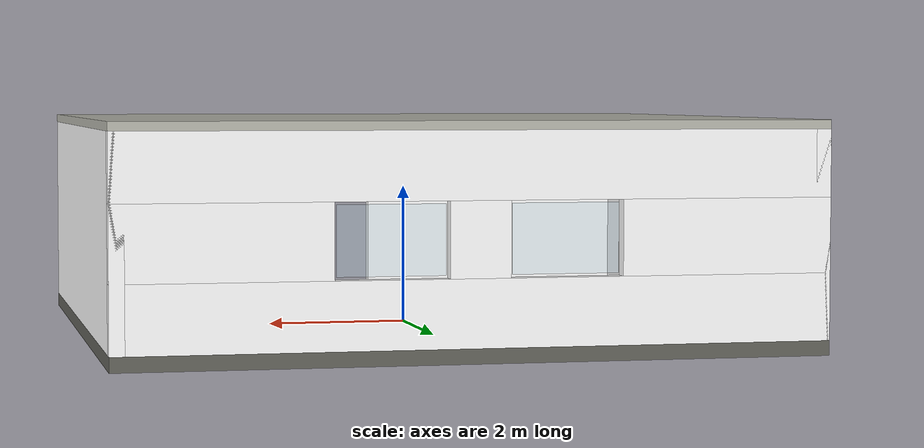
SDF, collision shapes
<?xml version="1.0"?>
<sdf version="1.12">
  <model name="factory_shell">
    <static>true</static>
    <model name='factory_floor'>
      <static>true</static>
      <link name='floor_link'>
        <pose>0 0 0 0 0 0</pose>
        <collision name='floor_collision'>
          <geometry>
            <box>
              <size>9.5 9.5 0.20000000000000001</size>
            </box>
          </geometry>
          <surface>
            <friction>
              <ode>
                <mu>1.2</mu>
                <mu2>1.2</mu2>
              </ode>
            </friction>
            <bounce/>
            <contact/>
          </surface>
        </collision>
        <visual name='floor_visual'>
          <geometry>
            <box>
              <size>9.5 9.5 0.20000000000000001</size>
            </box>
          </geometry>
          <material>
            <ambient>0.239999995 0.239999995 0.219999999 1</ambient>
            <diffuse>0.379999995 0.379999995 0.349999994 1</diffuse>
            <specular>0.119999997 0.119999997 0.100000001 1</specular>
          </material>
        </visual>
        <visual name='floor_surface_visual'>
          <pose>0 0 0.10050000000000001 0 0 0</pose>
          <geometry>
            <mesh>
              <uri>model://factory_shell/surfaces/tiled_plane_9p5m_8x.obj</uri>
            </mesh>
          </geometry>
          <material>
            <ambient>1 1 1 1</ambient>
            <diffuse>1 1 1 1</diffuse>
            <specular>0.119999997 0.119999997 0.119999997 1</specular>
            <pbr>
              <metal>
                <albedo_map>model://factory_shell/textures/interior_tiles_1k/textures/interior_tiles_diff_1k.jpg</albedo_map>
                <roughness_map>model://factory_shell/textures/interior_tiles_1k/textures/interior_tiles_rough_1k.exr</roughness_map>
                <metalness>0.0</metalness>
                <ambient_occlusion_map>model://factory_shell/textures/interior_tiles_1k/textures/interior_tiles_ao_1k.jpg</ambient_occlusion_map>
                <normal_map type='tangent'>model://factory_shell/textures/interior_tiles_1k/textures/interior_tiles_nor_gl_1k.exr</normal_map>
              </metal>
            </pbr>
          </material>
        </visual>
        <inertial>
          <pose>0 0 0 0 0 0</pose>
          <mass>1</mass>
          <inertia>
            <ixx>1</ixx>
            <ixy>0</ixy>
            <ixz>0</ixz>
            <iyy>1</iyy>
            <iyz>0</iyz>
            <izz>1</izz>
          </inertia>
        </inertial>
        <enable_wind>false</enable_wind>
      </link>
      <pose>0 0 0 0 0 0</pose>
      <self_collide>false</self_collide>
    </model>
    <model name='factory_ceiling'>
      <static>true</static>
      <link name='ceiling_link'>
        <pose>0 0 2.96 0 0 0</pose>
        <collision name='ceiling_collision'>
          <geometry>
            <box>
              <size>9.5 9.5 0.12</size>
            </box>
          </geometry>
          <surface>
            <friction>
              <ode/>
            </friction>
            <bounce/>
            <contact/>
          </surface>
        </collision>
        <visual name='ceiling_visual'>
          <geometry>
            <box>
              <size>9.5 9.5 0.12</size>
            </box>
          </geometry>
          <material>
            <ambient>0.579999983 0.579999983 0.560000002 1</ambient>
            <diffuse>0.720000029 0.720000029 0.680000007 1</diffuse>
            <specular>0.0299999993 0.0299999993 0.0299999993 1</specular>
          </material>
        </visual>
        <visual name='ceiling_surface_visual'>
          <pose>0 0 -0.060499999999999998 3.1415926535897931 0 0</pose>
          <geometry>
            <mesh>
              <uri>model://factory_shell/surfaces/tiled_plane_9p5m_8x.obj</uri>
            </mesh>
          </geometry>
          <material>
            <ambient>1 1 1 1</ambient>
            <diffuse>1 1 1 1</diffuse>
            <specular>0.0500000007 0.0500000007 0.0500000007 1</specular>
            <pbr>
              <metal>
                <albedo_map>model://factory_shell/textures/ceiling_interior_1k/textures/ceiling_interior_diff_1k.jpg</albedo_map>
                <roughness_map>model://factory_shell/textures/ceiling_interior_1k/textures/ceiling_interior_rough_1k.exr</roughness_map>
                <metalness>0.0</metalness>
                <ambient_occlusion_map>model://factory_shell/textures/ceiling_interior_1k/textures/ceiling_interior_ao_1k.jpg</ambient_occlusion_map>
                <normal_map type='tangent'>model://factory_shell/textures/ceiling_interior_1k/textures/ceiling_interior_nor_gl_1k.exr</normal_map>
              </metal>
            </pbr>
          </material>
        </visual>
        <inertial>
          <pose>0 0 0 0 0 0</pose>
          <mass>1</mass>
          <inertia>
            <ixx>1</ixx>
            <ixy>0</ixy>
            <ixz>0</ixz>
            <iyy>1</iyy>
            <iyz>0</iyz>
            <izz>1</izz>
          </inertia>
        </inertial>
        <enable_wind>false</enable_wind>
      </link>
      <pose>0 0 0 0 0 0</pose>
      <self_collide>false</self_collide>
    </model>
    <model name='north_wall'>
      <static>true</static>
      <link name='north_wall_lower_link'>
        <pose>0 4.6500000000000004 0.55000000000000004 0 0 0</pose>
        <collision name='north_wall_lower_collision'>
          <geometry>
            <box>
              <size>9.5 0.20000000000000001 0.90000000000000002</size>
            </box>
          </geometry>
          <surface>
            <friction>
              <ode/>
            </friction>
            <bounce/>
            <contact/>
          </surface>
        </collision>
        <visual name='north_wall_lower_visual'>
          <geometry>
            <mesh>
              <uri>model://factory_shell/meshes/north_wall_lower.obj</uri>
            </mesh>
          </geometry>
          <material>
            <ambient>1 1 1 1</ambient>
            <diffuse>1 1 1 1</diffuse>
            <specular>0.150000006 0.150000006 0.150000006 1</specular>
            <pbr>
              <metal>
                <albedo_map>model://factory_shell/textures/plastered_wall_02_1k/textures/plastered_wall_02_diff_1k.jpg</albedo_map>
                <roughness_map>model://factory_shell/textures/plastered_wall_02_1k/textures/plastered_wall_02_rough_1k.exr</roughness_map>
                <metalness>0.0</metalness>
                <ambient_occlusion_map>model://factory_shell/textures/plastered_wall_02_1k/textures/plastered_wall_02_ao_1k.jpg</ambient_occlusion_map>
                <normal_map type='tangent'>model://factory_shell/textures/plastered_wall_02_1k/textures/plastered_wall_02_nor_gl_1k.exr</normal_map>
              </metal>
            </pbr>
          </material>
        </visual>
        <inertial>
          <pose>0 0 0 0 0 0</pose>
          <mass>1</mass>
          <inertia>
            <ixx>1</ixx>
            <ixy>0</ixy>
            <ixz>0</ixz>
            <iyy>1</iyy>
            <iyz>0</iyz>
            <izz>1</izz>
          </inertia>
        </inertial>
        <enable_wind>false</enable_wind>
      </link>
      <link name='north_wall_upper_link'>
        <pose>0 4.6500000000000004 2.4500000000000002 0 0 0</pose>
        <collision name='north_wall_upper_collision'>
          <geometry>
            <box>
              <size>9.5 0.20000000000000001 0.90000000000000002</size>
            </box>
          </geometry>
          <surface>
            <friction>
              <ode/>
            </friction>
            <bounce/>
            <contact/>
          </surface>
        </collision>
        <visual name='north_wall_upper_visual'>
          <geometry>
            <mesh>
              <uri>model://factory_shell/meshes/north_wall_upper.obj</uri>
            </mesh>
          </geometry>
          <material>
            <ambient>1 1 1 1</ambient>
            <diffuse>1 1 1 1</diffuse>
            <specular>0.150000006 0.150000006 0.150000006 1</specular>
            <pbr>
              <metal>
                <albedo_map>model://factory_shell/textures/plastered_wall_02_1k/textures/plastered_wall_02_diff_1k.jpg</albedo_map>
                <roughness_map>model://factory_shell/textures/plastered_wall_02_1k/textures/plastered_wall_02_rough_1k.exr</roughness_map>
                <metalness>0.0</metalness>
                <ambient_occlusion_map>model://factory_shell/textures/plastered_wall_02_1k/textures/plastered_wall_02_ao_1k.jpg</ambient_occlusion_map>
                <normal_map type='tangent'>model://factory_shell/textures/plastered_wall_02_1k/textures/plastered_wall_02_nor_gl_1k.exr</normal_map>
              </metal>
            </pbr>
          </material>
        </visual>
        <inertial>
          <pose>0 0 0 0 0 0</pose>
          <mass>1</mass>
          <inertia>
            <ixx>1</ixx>
            <ixy>0</ixy>
            <ixz>0</ixz>
            <iyy>1</iyy>
            <iyz>0</iyz>
            <izz>1</izz>
          </inertia>
        </inertial>
        <enable_wind>false</enable_wind>
      </link>
      <link name='north_wall_left_pier_link'>
        <pose>-3.3250000000000002 4.6500000000000004 1.5 0 0 0</pose>
        <collision name='north_wall_left_pier_collision'>
          <geometry>
            <box>
              <size>2.8500000000000001 0.20000000000000001 1</size>
            </box>
          </geometry>
          <surface>
            <friction>
              <ode/>
            </friction>
            <bounce/>
            <contact/>
          </surface>
        </collision>
        <visual name='north_wall_left_pier_visual'>
          <geometry>
            <mesh>
              <uri>model://factory_shell/meshes/north_wall_left_pier.obj</uri>
            </mesh>
          </geometry>
          <material>
            <ambient>1 1 1 1</ambient>
            <diffuse>1 1 1 1</diffuse>
            <specular>0.150000006 0.150000006 0.150000006 1</specular>
            <pbr>
              <metal>
                <albedo_map>model://factory_shell/textures/plastered_wall_02_1k/textures/plastered_wall_02_diff_1k.jpg</albedo_map>
                <roughness_map>model://factory_shell/textures/plastered_wall_02_1k/textures/plastered_wall_02_rough_1k.exr</roughness_map>
                <metalness>0.0</metalness>
                <ambient_occlusion_map>model://factory_shell/textures/plastered_wall_02_1k/textures/plastered_wall_02_ao_1k.jpg</ambient_occlusion_map>
                <normal_map type='tangent'>model://factory_shell/textures/plastered_wall_02_1k/textures/plastered_wall_02_nor_gl_1k.exr</normal_map>
              </metal>
            </pbr>
          </material>
        </visual>
        <inertial>
          <pose>0 0 0 0 0 0</pose>
          <mass>1</mass>
          <inertia>
            <ixx>1</ixx>
            <ixy>0</ixy>
            <ixz>0</ixz>
            <iyy>1</iyy>
            <iyz>0</iyz>
            <izz>1</izz>
          </inertia>
        </inertial>
        <enable_wind>false</enable_wind>
      </link>
      <link name='north_wall_center_pier_link'>
        <pose>0 4.6500000000000004 1.5 0 0 0</pose>
        <collision name='north_wall_center_pier_collision'>
          <geometry>
            <box>
              <size>0.80000000000000004 0.20000000000000001 1</size>
            </box>
          </geometry>
          <surface>
            <friction>
              <ode/>
            </friction>
            <bounce/>
            <contact/>
          </surface>
        </collision>
        <visual name='north_wall_center_pier_visual'>
          <geometry>
            <mesh>
              <uri>model://factory_shell/meshes/north_wall_center_pier.obj</uri>
            </mesh>
          </geometry>
          <material>
            <ambient>1 1 1 1</ambient>
            <diffuse>1 1 1 1</diffuse>
            <specular>0.150000006 0.150000006 0.150000006 1</specular>
            <pbr>
              <metal>
                <albedo_map>model://factory_shell/textures/plastered_wall_02_1k/textures/plastered_wall_02_diff_1k.jpg</albedo_map>
                <roughness_map>model://factory_shell/textures/plastered_wall_02_1k/textures/plastered_wall_02_rough_1k.exr</roughness_map>
                <metalness>0.0</metalness>
                <ambient_occlusion_map>model://factory_shell/textures/plastered_wall_02_1k/textures/plastered_wall_02_ao_1k.jpg</ambient_occlusion_map>
                <normal_map type='tangent'>model://factory_shell/textures/plastered_wall_02_1k/textures/plastered_wall_02_nor_gl_1k.exr</normal_map>
              </metal>
            </pbr>
          </material>
        </visual>
        <inertial>
          <pose>0 0 0 0 0 0</pose>
          <mass>1</mass>
          <inertia>
            <ixx>1</ixx>
            <ixy>0</ixy>
            <ixz>0</ixz>
            <iyy>1</iyy>
            <iyz>0</iyz>
            <izz>1</izz>
          </inertia>
        </inertial>
        <enable_wind>false</enable_wind>
      </link>
      <link name='north_wall_right_pier_link'>
        <pose>3.3250000000000002 4.6500000000000004 1.5 0 0 0</pose>
        <collision name='north_wall_right_pier_collision'>
          <geometry>
            <box>
              <size>2.8500000000000001 0.20000000000000001 1</size>
            </box>
          </geometry>
          <surface>
            <friction>
              <ode/>
            </friction>
            <bounce/>
            <contact/>
          </surface>
        </collision>
        <visual name='north_wall_right_pier_visual'>
          <geometry>
            <mesh>
              <uri>model://factory_shell/meshes/north_wall_right_pier.obj</uri>
            </mesh>
          </geometry>
          <material>
            <ambient>1 1 1 1</ambient>
            <diffuse>1 1 1 1</diffuse>
            <specular>0.150000006 0.150000006 0.150000006 1</specular>
            <pbr>
              <metal>
                <albedo_map>model://factory_shell/textures/plastered_wall_02_1k/textures/plastered_wall_02_diff_1k.jpg</albedo_map>
                <roughness_map>model://factory_shell/textures/plastered_wall_02_1k/textures/plastered_wall_02_rough_1k.exr</roughness_map>
                <metalness>0.0</metalness>
                <ambient_occlusion_map>model://factory_shell/textures/plastered_wall_02_1k/textures/plastered_wall_02_ao_1k.jpg</ambient_occlusion_map>
                <normal_map type='tangent'>model://factory_shell/textures/plastered_wall_02_1k/textures/plastered_wall_02_nor_gl_1k.exr</normal_map>
              </metal>
            </pbr>
          </material>
        </visual>
        <inertial>
          <pose>0 0 0 0 0 0</pose>
          <mass>1</mass>
          <inertia>
            <ixx>1</ixx>
            <ixy>0</ixy>
            <ixz>0</ixz>
            <iyy>1</iyy>
            <iyz>0</iyz>
            <izz>1</izz>
          </inertia>
        </inertial>
        <enable_wind>false</enable_wind>
      </link>
      <link name='north_window_left_link'>
        <pose>-1.1499999999999999 4.6500000000000004 1.5 0 0 0</pose>
        <collision name='north_window_left_glass_collision'>
          <geometry>
            <box>
              <size>1.4199999999999999 0.029999999999999999 0.92000000000000004</size>
            </box>
          </geometry>
          <surface>
            <friction>
              <ode/>
            </friction>
            <bounce/>
            <contact/>
          </surface>
        </collision>
        <visual name='north_window_left_glass_visual'>
          <geometry>
            <box>
              <size>1.4199999999999999 0.029999999999999999 0.92000000000000004</size>
            </box>
          </geometry>
          <material>
            <ambient>0.620000005 0.75 0.819999993 0.300000012</ambient>
            <diffuse>0.74000001 0.860000014 0.920000017 0.300000012</diffuse>
            <specular>0.219999999 0.219999999 0.219999999 1</specular>
          </material>
          <transparency>0.59999999999999998</transparency>
        </visual>
        <visual name='north_window_left_frame_top_visual'>
          <pose>0 0 0.46999999999999997 0 0 0</pose>
          <geometry>
            <box>
              <size>1.5 0.059999999999999998 0.059999999999999998</size>
            </box>
          </geometry>
          <material>
            <ambient>0.180000007 0.200000003 0.219999999 1</ambient>
            <diffuse>0.280000001 0.300000012 0.319999993 1</diffuse>
            <specular>0.0799999982 0.0799999982 0.0799999982 1</specular>
          </material>
        </visual>
        <visual name='north_window_left_frame_bottom_visual'>
          <pose>0 0 -0.46999999999999997 0 0 0</pose>
          <geometry>
            <box>
              <size>1.5 0.059999999999999998 0.059999999999999998</size>
            </box>
          </geometry>
          <material>
            <ambient>0.180000007 0.200000003 0.219999999 1</ambient>
            <diffuse>0.280000001 0.300000012 0.319999993 1</diffuse>
            <specular>0.0799999982 0.0799999982 0.0799999982 1</specular>
          </material>
        </visual>
        <visual name='north_window_left_frame_left_visual'>
          <pose>-0.71999999999999997 0 0 0 0 0</pose>
          <geometry>
            <box>
              <size>0.059999999999999998 0.059999999999999998 1</size>
            </box>
          </geometry>
          <material>
            <ambient>0.180000007 0.200000003 0.219999999 1</ambient>
            <diffuse>0.280000001 0.300000012 0.319999993 1</diffuse>
            <specular>0.0799999982 0.0799999982 0.0799999982 1</specular>
          </material>
        </visual>
        <visual name='north_window_left_frame_right_visual'>
          <pose>0.71999999999999997 0 0 0 0 0</pose>
          <geometry>
            <box>
              <size>0.059999999999999998 0.059999999999999998 1</size>
            </box>
          </geometry>
          <material>
            <ambient>0.180000007 0.200000003 0.219999999 1</ambient>
            <diffuse>0.280000001 0.300000012 0.319999993 1</diffuse>
            <specular>0.0799999982 0.0799999982 0.0799999982 1</specular>
          </material>
        </visual>
        <visual name='north_window_left_frame_center_visual'>
          <pose>0 0 0 0 0 0</pose>
          <geometry>
            <box>
              <size>0.050000000000000003 0.050000000000000003 0.92000000000000004</size>
            </box>
          </geometry>
          <material>
            <ambient>0.180000007 0.200000003 0.219999999 1</ambient>
            <diffuse>0.280000001 0.300000012 0.319999993 1</diffuse>
            <specular>0.0799999982 0.0799999982 0.0799999982 1</specular>
          </material>
        </visual>
        <visual name='north_window_left_frame_transom_visual'>
          <pose>0 0 0.10000000000000001 0 0 0</pose>
          <geometry>
            <box>
              <size>1.4199999999999999 0.050000000000000003 0.050000000000000003</size>
            </box>
          </geometry>
          <material>
            <ambient>0.180000007 0.200000003 0.219999999 1</ambient>
            <diffuse>0.280000001 0.300000012 0.319999993 1</diffuse>
            <specular>0.0799999982 0.0799999982 0.0799999982 1</specular>
          </material>
        </visual>
        <inertial>
          <pose>0 0 0 0 0 0</pose>
          <mass>1</mass>
          <inertia>
            <ixx>1</ixx>
            <ixy>0</ixy>
            <ixz>0</ixz>
            <iyy>1</iyy>
            <iyz>0</iyz>
            <izz>1</izz>
          </inertia>
        </inertial>
        <enable_wind>false</enable_wind>
      </link>
      <link name='north_window_right_link'>
        <pose>1.1499999999999999 4.6500000000000004 1.5 0 0 0</pose>
        <collision name='north_window_right_glass_collision'>
          <geometry>
            <box>
              <size>1.4199999999999999 0.029999999999999999 0.92000000000000004</size>
            </box>
          </geometry>
          <surface>
            <friction>
              <ode/>
            </friction>
            <bounce/>
            <contact/>
          </surface>
        </collision>
        <visual name='north_window_right_glass_visual'>
          <geometry>
            <box>
              <size>1.4199999999999999 0.029999999999999999 0.92000000000000004</size>
            </box>
          </geometry>
          <material>
            <ambient>0.620000005 0.75 0.819999993 0.300000012</ambient>
            <diffuse>0.74000001 0.860000014 0.920000017 0.300000012</diffuse>
            <specular>0.219999999 0.219999999 0.219999999 1</specular>
          </material>
          <transparency>0.59999999999999998</transparency>
        </visual>
        <visual name='north_window_right_frame_top_visual'>
          <pose>0 0 0.46999999999999997 0 0 0</pose>
          <geometry>
            <box>
              <size>1.5 0.059999999999999998 0.059999999999999998</size>
            </box>
          </geometry>
          <material>
            <ambient>0.180000007 0.200000003 0.219999999 1</ambient>
            <diffuse>0.280000001 0.300000012 0.319999993 1</diffuse>
            <specular>0.0799999982 0.0799999982 0.0799999982 1</specular>
          </material>
        </visual>
        <visual name='north_window_right_frame_bottom_visual'>
          <pose>0 0 -0.46999999999999997 0 0 0</pose>
          <geometry>
            <box>
              <size>1.5 0.059999999999999998 0.059999999999999998</size>
            </box>
          </geometry>
          <material>
            <ambient>0.180000007 0.200000003 0.219999999 1</ambient>
            <diffuse>0.280000001 0.300000012 0.319999993 1</diffuse>
            <specular>0.0799999982 0.0799999982 0.0799999982 1</specular>
          </material>
        </visual>
        <visual name='north_window_right_frame_left_visual'>
          <pose>-0.71999999999999997 0 0 0 0 0</pose>
          <geometry>
            <box>
              <size>0.059999999999999998 0.059999999999999998 1</size>
            </box>
          </geometry>
          <material>
            <ambient>0.180000007 0.200000003 0.219999999 1</ambient>
            <diffuse>0.280000001 0.300000012 0.319999993 1</diffuse>
            <specular>0.0799999982 0.0799999982 0.0799999982 1</specular>
          </material>
        </visual>
        <visual name='north_window_right_frame_right_visual'>
          <pose>0.71999999999999997 0 0 0 0 0</pose>
          <geometry>
            <box>
              <size>0.059999999999999998 0.059999999999999998 1</size>
            </box>
          </geometry>
          <material>
            <ambient>0.180000007 0.200000003 0.219999999 1</ambient>
            <diffuse>0.280000001 0.300000012 0.319999993 1</diffuse>
            <specular>0.0799999982 0.0799999982 0.0799999982 1</specular>
          </material>
        </visual>
        <visual name='north_window_right_frame_center_visual'>
          <pose>0 0 0 0 0 0</pose>
          <geometry>
            <box>
              <size>0.050000000000000003 0.050000000000000003 0.92000000000000004</size>
            </box>
          </geometry>
          <material>
            <ambient>0.180000007 0.200000003 0.219999999 1</ambient>
            <diffuse>0.280000001 0.300000012 0.319999993 1</diffuse>
            <specular>0.0799999982 0.0799999982 0.0799999982 1</specular>
          </material>
        </visual>
        <visual name='north_window_right_frame_transom_visual'>
          <pose>0 0 0.10000000000000001 0 0 0</pose>
          <geometry>
            <box>
              <size>1.4199999999999999 0.050000000000000003 0.050000000000000003</size>
            </box>
          </geometry>
          <material>
            <ambient>0.180000007 0.200000003 0.219999999 1</ambient>
            <diffuse>0.280000001 0.300000012 0.319999993 1</diffuse>
            <specular>0.0799999982 0.0799999982 0.0799999982 1</specular>
          </material>
        </visual>
        <inertial>
          <pose>0 0 0 0 0 0</pose>
          <mass>1</mass>
          <inertia>
            <ixx>1</ixx>
            <ixy>0</ixy>
            <ixz>0</ixz>
            <iyy>1</iyy>
            <iyz>0</iyz>
            <izz>1</izz>
          </inertia>
        </inertial>
        <enable_wind>false</enable_wind>
      </link>
      <pose>0 0 0 0 0 0</pose>
      <self_collide>false</self_collide>
    </model>
    <model name='south_wall'>
      <static>true</static>
      <link name='south_wall_left_link'>
        <pose>-2.5625 -4.6500000000000004 1.5 0 0 0</pose>
        <collision name='south_wall_left_collision'>
          <geometry>
            <box>
              <size>4.375 0.20000000000000001 2.7999999999999998</size>
            </box>
          </geometry>
          <surface>
            <friction>
              <ode/>
            </friction>
            <bounce/>
            <contact/>
          </surface>
        </collision>
        <visual name='south_wall_left_visual'>
          <geometry>
            <mesh>
              <uri>model://factory_shell/meshes/south_wall_left.obj</uri>
            </mesh>
          </geometry>
          <material>
            <ambient>1 1 1 1</ambient>
            <diffuse>1 1 1 1</diffuse>
            <specular>0.150000006 0.150000006 0.150000006 1</specular>
            <pbr>
              <metal>
                <albedo_map>model://factory_shell/textures/plastered_wall_02_1k/textures/plastered_wall_02_diff_1k.jpg</albedo_map>
                <roughness_map>model://factory_shell/textures/plastered_wall_02_1k/textures/plastered_wall_02_rough_1k.exr</roughness_map>
                <metalness>0.0</metalness>
                <ambient_occlusion_map>model://factory_shell/textures/plastered_wall_02_1k/textures/plastered_wall_02_ao_1k.jpg</ambient_occlusion_map>
                <normal_map type='tangent'>model://factory_shell/textures/plastered_wall_02_1k/textures/plastered_wall_02_nor_gl_1k.exr</normal_map>
              </metal>
            </pbr>
          </material>
        </visual>
        <inertial>
          <pose>0 0 0 0 0 0</pose>
          <mass>1</mass>
          <inertia>
            <ixx>1</ixx>
            <ixy>0</ixy>
            <ixz>0</ixz>
            <iyy>1</iyy>
            <iyz>0</iyz>
            <izz>1</izz>
          </inertia>
        </inertial>
        <enable_wind>false</enable_wind>
      </link>
      <link name='south_wall_right_link'>
        <pose>2.5625 -4.6500000000000004 1.5 0 0 0</pose>
        <collision name='south_wall_right_collision'>
          <geometry>
            <box>
              <size>4.375 0.20000000000000001 2.7999999999999998</size>
            </box>
          </geometry>
          <surface>
            <friction>
              <ode/>
            </friction>
            <bounce/>
            <contact/>
          </surface>
        </collision>
        <visual name='south_wall_right_visual'>
          <geometry>
            <mesh>
              <uri>model://factory_shell/meshes/south_wall_right.obj</uri>
            </mesh>
          </geometry>
          <material>
            <ambient>1 1 1 1</ambient>
            <diffuse>1 1 1 1</diffuse>
            <specular>0.150000006 0.150000006 0.150000006 1</specular>
            <pbr>
              <metal>
                <albedo_map>model://factory_shell/textures/plastered_wall_02_1k/textures/plastered_wall_02_diff_1k.jpg</albedo_map>
                <roughness_map>model://factory_shell/textures/plastered_wall_02_1k/textures/plastered_wall_02_rough_1k.exr</roughness_map>
                <metalness>0.0</metalness>
                <ambient_occlusion_map>model://factory_shell/textures/plastered_wall_02_1k/textures/plastered_wall_02_ao_1k.jpg</ambient_occlusion_map>
                <normal_map type='tangent'>model://factory_shell/textures/plastered_wall_02_1k/textures/plastered_wall_02_nor_gl_1k.exr</normal_map>
              </metal>
            </pbr>
          </material>
        </visual>
        <inertial>
          <pose>0 0 0 0 0 0</pose>
          <mass>1</mass>
          <inertia>
            <ixx>1</ixx>
            <ixy>0</ixy>
            <ixz>0</ixz>
            <iyy>1</iyy>
            <iyz>0</iyz>
            <izz>1</izz>
          </inertia>
        </inertial>
        <enable_wind>false</enable_wind>
      </link>
      <link name='south_wall_overdoor_link'>
        <pose>0 -4.6500000000000004 2.4422799999999998 0 0 0</pose>
        <collision name='south_wall_overdoor_collision'>
          <geometry>
            <box>
              <size>0.90000000000000002 0.20000000000000001 0.91544999999999999</size>
            </box>
          </geometry>
          <surface>
            <friction>
              <ode/>
            </friction>
            <bounce/>
            <contact/>
          </surface>
        </collision>
        <visual name='south_wall_overdoor_visual'>
          <geometry>
            <mesh>
              <uri>model://factory_shell/meshes/south_wall_overdoor.obj</uri>
            </mesh>
          </geometry>
          <material>
            <ambient>1 1 1 1</ambient>
            <diffuse>1 1 1 1</diffuse>
            <specular>0.150000006 0.150000006 0.150000006 1</specular>
            <pbr>
              <metal>
                <albedo_map>model://factory_shell/textures/plastered_wall_02_1k/textures/plastered_wall_02_diff_1k.jpg</albedo_map>
                <roughness_map>model://factory_shell/textures/plastered_wall_02_1k/textures/plastered_wall_02_rough_1k.exr</roughness_map>
                <metalness>0.0</metalness>
                <ambient_occlusion_map>model://factory_shell/textures/plastered_wall_02_1k/textures/plastered_wall_02_ao_1k.jpg</ambient_occlusion_map>
                <normal_map type='tangent'>model://factory_shell/textures/plastered_wall_02_1k/textures/plastered_wall_02_nor_gl_1k.exr</normal_map>
              </metal>
            </pbr>
          </material>
        </visual>
        <inertial>
          <pose>0 0 0 0 0 0</pose>
          <mass>1</mass>
          <inertia>
            <ixx>1</ixx>
            <ixy>0</ixy>
            <ixz>0</ixz>
            <iyy>1</iyy>
            <iyz>0</iyz>
            <izz>1</izz>
          </inertia>
        </inertial>
        <enable_wind>false</enable_wind>
      </link>
      <pose>0 0 0 0 0 0</pose>
      <self_collide>false</self_collide>
    </model>
    <model name='east_wall'>
      <static>true</static>
      <link name='east_wall_link'>
        <pose>4.6500000000000004 0 1.5 0 0 1.5708</pose>
        <collision name='east_wall_collision'>
          <geometry>
            <box>
              <size>9.5 0.20000000000000001 2.7999999999999998</size>
            </box>
          </geometry>
          <surface>
            <friction>
              <ode/>
            </friction>
            <bounce/>
            <contact/>
          </surface>
        </collision>
        <visual name='east_wall_visual'>
          <geometry>
            <mesh>
              <uri>model://factory_shell/meshes/east_wall.obj</uri>
            </mesh>
          </geometry>
          <material>
            <ambient>1 1 1 1</ambient>
            <diffuse>1 1 1 1</diffuse>
            <specular>0.150000006 0.150000006 0.150000006 1</specular>
            <pbr>
              <metal>
                <albedo_map>model://factory_shell/textures/plastered_wall_02_1k/textures/plastered_wall_02_diff_1k.jpg</albedo_map>
                <roughness_map>model://factory_shell/textures/plastered_wall_02_1k/textures/plastered_wall_02_rough_1k.exr</roughness_map>
                <metalness>0.0</metalness>
                <ambient_occlusion_map>model://factory_shell/textures/plastered_wall_02_1k/textures/plastered_wall_02_ao_1k.jpg</ambient_occlusion_map>
                <normal_map type='tangent'>model://factory_shell/textures/plastered_wall_02_1k/textures/plastered_wall_02_nor_gl_1k.exr</normal_map>
              </metal>
            </pbr>
          </material>
        </visual>
        <inertial>
          <pose>0 0 0 0 0 0</pose>
          <mass>1</mass>
          <inertia>
            <ixx>1</ixx>
            <ixy>0</ixy>
            <ixz>0</ixz>
            <iyy>1</iyy>
            <iyz>0</iyz>
            <izz>1</izz>
          </inertia>
        </inertial>
        <enable_wind>false</enable_wind>
      </link>
      <pose>0 -6.343825442146034e-14 -1.3322676295501878e-15 0 0 1.3988810110276972e-14</pose>
      <self_collide>false</self_collide>
    </model>
    <model name='west_wall'>
      <static>true</static>
      <link name='west_wall_link'>
        <pose>-4.6500000000000004 0 1.5 0 0 1.5708</pose>
        <collision name='west_wall_collision'>
          <geometry>
            <box>
              <size>9.5 0.20000000000000001 2.7999999999999998</size>
            </box>
          </geometry>
          <surface>
            <friction>
              <ode/>
            </friction>
            <bounce/>
            <contact/>
          </surface>
        </collision>
        <visual name='west_wall_visual'>
          <geometry>
            <mesh>
              <uri>model://factory_shell/meshes/west_wall.obj</uri>
            </mesh>
          </geometry>
          <material>
            <ambient>1 1 1 1</ambient>
            <diffuse>1 1 1 1</diffuse>
            <specular>0.150000006 0.150000006 0.150000006 1</specular>
            <pbr>
              <metal>
                <albedo_map>model://factory_shell/textures/plastered_wall_02_1k/textures/plastered_wall_02_diff_1k.jpg</albedo_map>
                <roughness_map>model://factory_shell/textures/plastered_wall_02_1k/textures/plastered_wall_02_rough_1k.exr</roughness_map>
                <metalness>0.0</metalness>
                <ambient_occlusion_map>model://factory_shell/textures/plastered_wall_02_1k/textures/plastered_wall_02_ao_1k.jpg</ambient_occlusion_map>
                <normal_map type='tangent'>model://factory_shell/textures/plastered_wall_02_1k/textures/plastered_wall_02_nor_gl_1k.exr</normal_map>
              </metal>
            </pbr>
          </material>
        </visual>
        <inertial>
          <pose>0 0 0 0 0 0</pose>
          <mass>1</mass>
          <inertia>
            <ixx>1</ixx>
            <ixy>0</ixy>
            <ixz>0</ixz>
            <iyy>1</iyy>
            <iyz>0</iyz>
            <izz>1</izz>
          </inertia>
        </inertial>
        <enable_wind>false</enable_wind>
      </link>
      <pose>0 6.343825442146034e-14 -1.3322676295501878e-15 0 0 1.3988810110276972e-14</pose>
      <self_collide>false</self_collide>
    </model>
    <pose>0 0 0 0 0 0</pose>
  </model>
</sdf>
